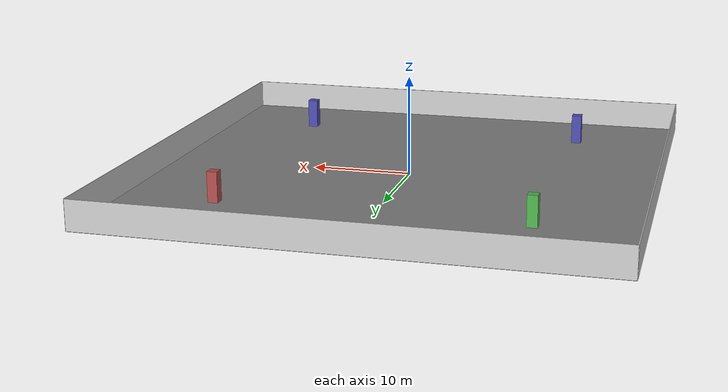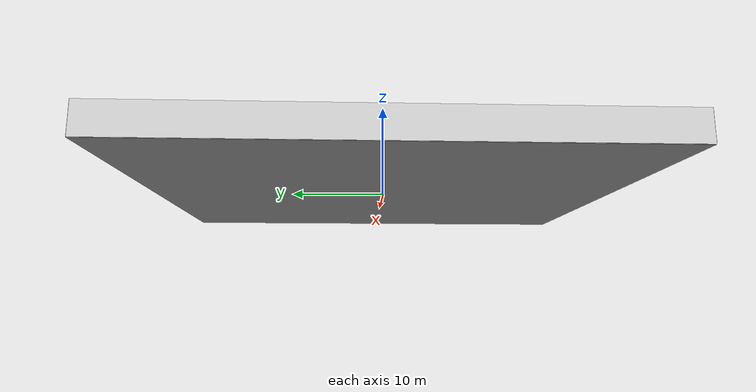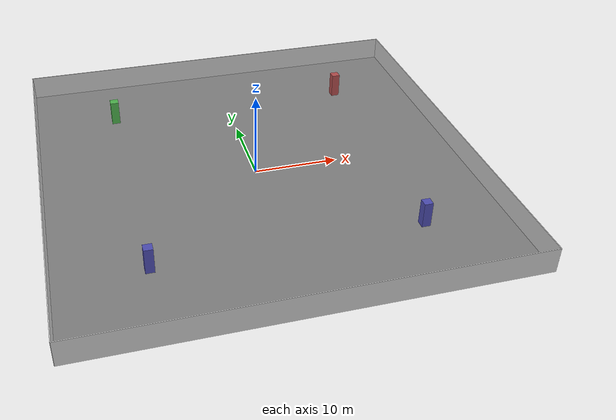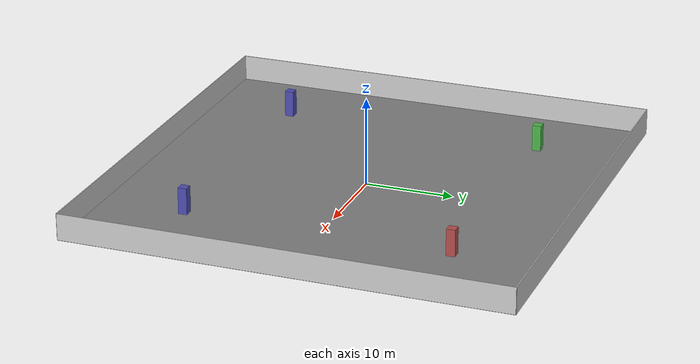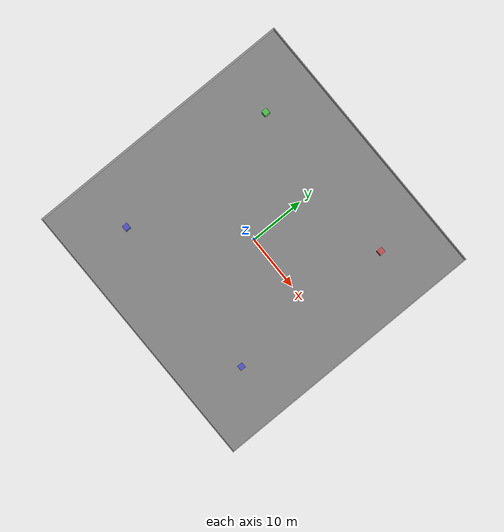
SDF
<?xml version="1.0" ?>
<sdf version="1.6">
  <model name="indoor_environment">
    <!-- 增加更大的地面 -->
    <link name="floor">
      <collision name="collision">
        <geometry>
          <box>
            <size>50 50 0.1</size> <!-- 增加地面的大小 -->
          </box>
        </geometry>
      </collision>
      <visual name="visual">
        <geometry>
          <box>
            <size>50 50 0.1</size> <!-- 增加地面的大小 -->
          </box>
        </geometry>
        <material>
          <ambient>0.5 0.5 0.5 1</ambient>
          <diffuse>0.5 0.5 0.5 1</diffuse>
        </material>
      </visual>
    </link>

    <!-- 粗立方体柱子1 -->
    <link name="pillar_1">
      <pose>15 15 2 0 0 0</pose> <!-- 柱子的位置 -->
      <collision name="collision">
        <geometry>
          <box>
            <size>1 1 3</size> <!-- 柱子的尺寸：1x1米，3米高 -->
          </box>
        </geometry>
      </collision>
      <visual name="visual">
        <geometry>
          <box>
            <size>1 1 3</size> <!-- 柱子的尺寸 -->
          </box>
        </geometry>
        <material>
          <ambient>0.7 0.3 0.3 1</ambient> <!-- 柱子的颜色（红色调） -->
          <diffuse>0.7 0.3 0.3 1</diffuse>
        </material>
      </visual>
    </link>

    <!-- 粗立方体柱子2 -->
    <link name="pillar_2">
      <pose>-15 15 2 0 0 0</pose> <!-- 柱子的位置 -->
      <collision name="collision">
        <geometry>
          <box>
            <size>1 1 3</size> <!-- 柱子的尺寸：1x1米，3米高 -->
          </box>
        </geometry>
      </collision>
      <visual name="visual">
        <geometry>
          <box>
            <size>1 1 3</size> <!-- 柱子的尺寸 -->
          </box>
        </geometry>
        <material>
          <ambient>0.3 0.7 0.3 1</ambient> <!-- 柱子的颜色（绿色调） -->
          <diffuse>0.3 0.7 0.3 1</diffuse>
        </material>
      </visual>
    </link>

    <!-- 粗立方体柱子3 -->
    <link name="pillar_3">
      <pose>15 -15 2 0 0 0</pose> <!-- 柱子的位置 -->
      <collision name="collision">
        <geometry>
          <box>
            <size>1 1 3</size> <!-- 柱子的尺寸：1x1米，3米高 -->
          </box>
        </geometry>
      </collision>
      <visual name="visual">
        <geometry>
          <box>
            <size>1 1 3</size> <!-- 柱子的尺寸 -->
          </box>
        </geometry>
        <material>
          <ambient>0.3 0.3 0.7 1</ambient> <!-- 柱子的颜色（蓝色调） -->
          <diffuse>0.3 0.3 0.7 1</diffuse>
        </material>
      </visual>
    </link>

        <!-- 粗立方体柱子4 -->
    <link name="pillar_4">
      <pose>-15 -15 2 0 0 0</pose> <!-- 柱子的位置 -->
      <collision name="collision">
        <geometry>
          <box>
            <size>1 1 3</size> <!-- 柱子的尺寸：1x1米，3米高 -->
          </box>
        </geometry>
      </collision>
      <visual name="visual">
        <geometry>
          <box>
            <size>1 1 3</size> <!-- 柱子的尺寸 -->
          </box>
        </geometry>
        <material>
          <ambient>0.3 0.3 0.7 1</ambient> <!-- 柱子的颜色（蓝色调） -->
          <diffuse>0.3 0.3 0.7 1</diffuse>
        </material>
      </visual>
    </link>

    <!-- 增加一些墙壁 -->
    <link name="wall_1">
      <pose>25 0 1.5 0 0 0</pose>
      <collision name="collision">
        <geometry>
          <box>
            <size>0.1 50 3</size> <!-- 墙壁的尺寸 -->
          </box>
        </geometry>
      </collision>
      <visual name="visual">
        <geometry>
          <box>
            <size>0.1 50 3</size>
          </box>
        </geometry>
        <material>
          <ambient>0.8 0.8 0.8 1</ambient>
          <diffuse>0.8 0.8 0.8 1</diffuse>
        </material>
      </visual>
    </link>

    <link name="wall_2">
      <pose>-25 0 1.5 0 0 0</pose>
      <collision name="collision">
        <geometry>
          <box>
            <size>0.1 50 3</size>
          </box>
        </geometry>
      </collision>
      <visual name="visual">
        <geometry>
          <box>
            <size>0.1 50 3</size>
          </box>
        </geometry>
        <material>
          <ambient>0.8 0.8 0.8 1</ambient>
          <diffuse>0.8 0.8 0.8 1</diffuse>
        </material>
      </visual>
    </link>

    <link name="wall_3">
      <pose>0 25 1.5 0 0 0</pose>
      <collision name="collision">
        <geometry>
          <box>
            <size>50 0.1 3</size>
          </box>
        </geometry>
      </collision>
      <visual name="visual">
        <geometry>
          <box>
            <size>50 0.1 3</size>
          </box>
        </geometry>
        <material>
          <ambient>0.8 0.8 0.8 1</ambient>
          <diffuse>0.8 0.8 0.8 1</diffuse>
        </material>
      </visual>
    </link>

    <link name="wall_4">
      <pose>0 -25 1.5 0 0 0</pose>
      <collision name="collision">
        <geometry>
          <box>
            <size>50 0.1 3</size>
          </box>
        </geometry>
      </collision>
      <visual name="visual">
        <geometry>
          <box>
            <size>50 0.1 3</size>
          </box>
        </geometry>
        <material>
          <ambient>0.8 0.8 0.8 1</ambient>
          <diffuse>0.8 0.8 0.8 1</diffuse>
        </material>
      </visual>
    </link>

  </model>
</sdf>
